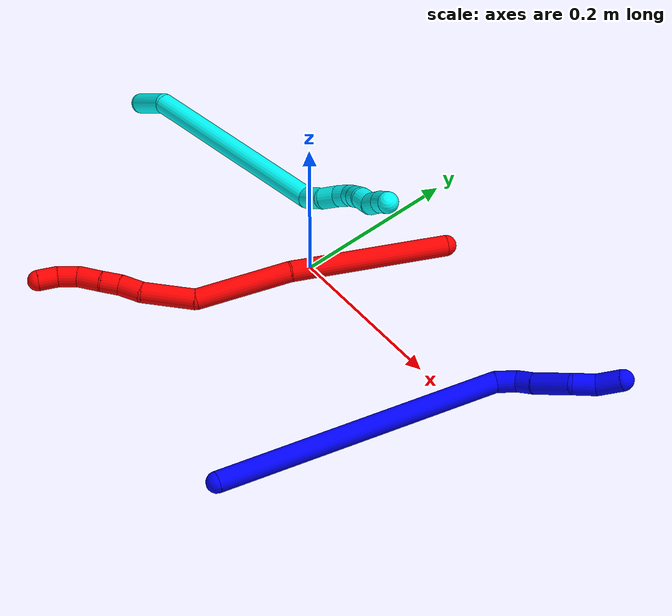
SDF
<sdf version="1.7">
 <world name="default">
  <plugin name="TubeGeneratorPlugin" filename="libtube_generator_plugin.so"/>
  <model name="photoneo_s_sensor">
   <static>1</static>
   <pose>0 0 2 1.57079 1.57079 3.14159</pose>
   <link name="link">
    <inertial><mass>0.1</mass></inertial>
    <sensor name="sensor" type="depth">
     <update_rate>30</update_rate>
     <camera>
      <horizontal_fov>1.22</horizontal_fov>
      <image><width>1920</width><height>1200</height><format>B8G8R8</format></image>
      <clip><near>0.1</near><far>4</far></clip>
      <depth_camera><output>points</output></depth_camera>
     </camera>
     <plugin name="camera_plugin" filename="libgazebo_ros_depth_camera.so">
      <baseline>0.2</baseline>
      <alwaysOn>1</alwaysOn>
      <updateRate>0.0</updateRate>
      <cameraName>camera_ir</cameraName>
      <imageTopicName>/camera/color/image_raw</imageTopicName>
      <cameraInfoTopicName>/camera/color/camera_info</cameraInfoTopicName>
      <depthImageTopicName>/camera/depth/image_raw</depthImageTopicName>
      <depthImageCameraInfoTopicName>/camera/depth/camera_info</depthImageCameraInfoTopicName>
      <pointCloudTopicName>/camera/depth/points</pointCloudTopicName>
      <frameName>fr_optical</frameName>
      <pointCloudCutoff>0.1</pointCloudCutoff>
      <pointCloudCutoffMax>2.0</pointCloudCutoffMax>
      <distortionK1>0</distortionK1>
      <distortionK2>0</distortionK2>
      <distortionK3>0</distortionK3>
      <distortionT1>0</distortionT1>
      <distortionT2>0</distortionT2>
      <CxPrime>0</CxPrime>
      <Cx>0</Cx>
      <Cy>0</Cy>
      <focalLength>0</focalLength>
      <hackBaseline>0</hackBaseline>
     </plugin>
    </sensor>
   </link>
  </model>
  <gravity>0 0 -9.8</gravity>
  <magnetic_field>6e-06 2.3e-05 -4.2e-05</magnetic_field>
  <atmosphere type="adiabatic"/>
  <physics name="default_physics" default="0" type="ode">
   <max_step_size>0.003</max_step_size>
   <real_time_factor>1</real_time_factor>
   <real_time_update_rate>1000</real_time_update_rate>
   <max_contacts>10000</max_contacts>
   <ode>
    <solver>
     <type>quick</type>
     <iters>100</iters>
     <sor>1.3</sor>
     <use_dynamic_moi_rescaling>0</use_dynamic_moi_rescaling>
    </solver>
    <constraints>
     <contact_max_correcting_vel>0</contact_max_correcting_vel>
     <contact_surface_layer>0.001</contact_surface_layer>
     <cfm>0</cfm>
     <erp>0.2</erp>
    </constraints>
   </ode>
  </physics>
  <scene><ambient>0.4 0.4 0.4 1</ambient><background>0.7 0.7 0.7 1</background><shadows>0</shadows></scene>
  <audio><device>default</device></audio>
  <spherical_coordinates>
   <surface_model>EARTH_WGS84</surface_model>
   <latitude_deg>0</latitude_deg>
   <longitude_deg>0</longitude_deg>
   <elevation>0</elevation>
   <heading_deg>0</heading_deg>
  </spherical_coordinates>
  <model name="bin">
   <static>1</static>
   <link name="bottom">
    <collision name="collision-bottom">
     <pose>0 0 -0.01 0 -0 0</pose>
     <geometry><box><size>0.8 0.6 0.02</size></box></geometry>
     <surface>
      <friction><ode><mu>100</mu><mu2>100</mu2></ode></friction>
      <contact><collide_bitmask>65535</collide_bitmask></contact>
     </surface>
    </collision>
   </link>
   <link name="west_wall">
    <collision name="collision-west_wall">
     <pose>-0.41 0 0.1 0 -0 0</pose>
     <geometry><box><size>0.02 0.6 0.2</size></box></geometry>
     <surface>
      <friction><ode><mu>100</mu><mu2>100</mu2></ode></friction>
      <contact><collide_bitmask>65535</collide_bitmask></contact>
     </surface>
    </collision>
   </link>
   <link name="east_wall">
    <collision name="collision-east_wall">
     <pose>0.41 0 0.1 0 -0 0</pose>
     <geometry><box><size>0.02 0.6 0.2</size></box></geometry>
     <surface>
      <friction><ode><mu>100</mu><mu2>100</mu2></ode></friction>
      <contact><collide_bitmask>65535</collide_bitmask></contact>
     </surface>
    </collision>
   </link>
   <link name="south_wall">
    <collision name="collision-south_wall">
     <pose>0 -0.31 0.1 0 -0 0</pose>
     <geometry><box><size>0.8 0.02 0.2</size></box></geometry>
     <surface>
      <friction><ode><mu>100</mu><mu2>100</mu2></ode></friction>
      <contact><collide_bitmask>65535</collide_bitmask></contact>
     </surface>
    </collision>
   </link>
   <link name="north_wall">
    <collision name="collision-north_wall">
     <pose>0 0.31 0.1 0 -0 0</pose>
     <geometry><box><size>0.8 0.02 0.2</size></box></geometry>
     <surface>
      <friction><ode><mu>100</mu><mu2>100</mu2></ode></friction>
      <contact><collide_bitmask>65535</collide_bitmask></contact>
     </surface>
    </collision>
   </link>
  </model>
  <model name="1">
   <static>0</static>
   <link name="1">
    <collision name="collision-cylinder-e_1_1_4">
     <pose>0.068774 0.072668 0.141328 -0.474929 0.408433 -0.100167</pose>
     <geometry><cylinder><radius>0.0125</radius><length>0.346319</length></cylinder></geometry>
     <surface>
      <friction><ode><mu>1.16</mu><mu2>1.16</mu2><slip1>0</slip1><slip2>0</slip2></ode></friction>
      <contact><ode><kp>1e+06</kp><kd>1</kd><max_vel>0</max_vel><min_depth>0.001</min_depth></ode></contact>
     </surface>
    </collision>
    <visual name="visual-cylinder-e_1_1_4">
     <pose>0.068774 0.072668 0.141328 -0.474929 0.408433 -0.100167</pose>
     <geometry><cylinder><radius>0.0125</radius><length>0.346319</length></cylinder></geometry>
     <material><ambient>0 0 1 1</ambient></material>
    </visual>
    <collision name="collision-cylinder-e_2_4_5">
     <pose>0.138596 0.155218 0.290754 -0.884283 0.081839 -0.038759</pose>
     <geometry><cylinder><radius>0.0125</radius><length>0.025636</length></cylinder></geometry>
     <surface>
      <friction><ode><mu>1.16</mu><mu2>1.16</mu2><slip1>0</slip1><slip2>0</slip2></ode></friction>
      <contact><ode><kp>1e+06</kp><kd>1</kd><max_vel>0</max_vel><min_depth>0.001</min_depth></ode></contact>
     </surface>
    </collision>
    <visual name="visual-cylinder-e_2_4_5">
     <pose>0.138596 0.155218 0.290754 -0.884283 0.081839 -0.038759</pose>
     <geometry><cylinder><radius>0.0125</radius><length>0.025636</length></cylinder></geometry>
     <material><ambient>0 0 1 1</ambient></material>
    </visual>
    <collision name="collision-cylinder-e_3_5_6">
     <pose>0.138481 0.175751 0.300988 -1.37286 -0.106669 0.087426</pose>
     <geometry><cylinder><radius>0.0125</radius><length>0.021852</length></cylinder></geometry>
     <surface>
      <friction><ode><mu>1.16</mu><mu2>1.16</mu2><slip1>0</slip1><slip2>0</slip2></ode></friction>
      <contact><ode><kp>1e+06</kp><kd>1</kd><max_vel>0</max_vel><min_depth>0.001</min_depth></ode></contact>
     </surface>
    </collision>
    <visual name="visual-cylinder-e_3_5_6">
     <pose>0.138481 0.175751 0.300988 -1.37286 -0.106669 0.087426</pose>
     <geometry><cylinder><radius>0.0125</radius><length>0.021852</length></cylinder></geometry>
     <material><ambient>0 0 1 1</ambient></material>
    </visual>
    <collision name="collision-cylinder-e_4_6_7">
     <pose>0.137351 0.209488 0.308908 -1.32528 0.00141 -0.001101</pose>
     <geometry><cylinder><radius>0.0125</radius><length>0.047597</length></cylinder></geometry>
     <surface>
      <friction><ode><mu>1.16</mu><mu2>1.16</mu2><slip1>0</slip1><slip2>0</slip2></ode></friction>
      <contact><ode><kp>1e+06</kp><kd>1</kd><max_vel>0</max_vel><min_depth>0.001</min_depth></ode></contact>
     </surface>
    </collision>
    <visual name="visual-cylinder-e_4_6_7">
     <pose>0.137351 0.209488 0.308908 -1.32528 0.00141 -0.001101</pose>
     <geometry><cylinder><radius>0.0125</radius><length>0.047597</length></cylinder></geometry>
     <material><ambient>0 0 1 1</ambient></material>
    </visual>
    <collision name="collision-cylinder-e_5_7_8">
     <pose>0.137653 0.243241 0.323221 -0.896439 0.019673 -0.00946</pose>
     <geometry><cylinder><radius>0.0125</radius><length>0.027322</length></cylinder></geometry>
     <surface>
      <friction><ode><mu>1.16</mu><mu2>1.16</mu2><slip1>0</slip1><slip2>0</slip2></ode></friction>
      <contact><ode><kp>1e+06</kp><kd>1</kd><max_vel>0</max_vel><min_depth>0.001</min_depth></ode></contact>
     </surface>
    </collision>
    <visual name="visual-cylinder-e_5_7_8">
     <pose>0.137653 0.243241 0.323221 -0.896439 0.019673 -0.00946</pose>
     <geometry><cylinder><radius>0.0125</radius><length>0.027322</length></cylinder></geometry>
     <material><ambient>0 0 1 1</ambient></material>
    </visual>
    <collision name="collision-cylinder-e_6_8_2">
     <pose>0.140912 0.268305 0.337072 -1.21664 0.192387 -0.134196</pose>
     <geometry><cylinder><radius>0.0125</radius><length>0.031274</length></cylinder></geometry>
     <surface>
      <friction><ode><mu>1.16</mu><mu2>1.16</mu2><slip1>0</slip1><slip2>0</slip2></ode></friction>
      <contact><ode><kp>1e+06</kp><kd>1</kd><max_vel>0</max_vel><min_depth>0.001</min_depth></ode></contact>
     </surface>
    </collision>
    <visual name="visual-cylinder-e_6_8_2">
     <pose>0.140912 0.268305 0.337072 -1.21664 0.192387 -0.134196</pose>
     <geometry><cylinder><radius>0.0125</radius><length>0.031274</length></cylinder></geometry>
     <material><ambient>0 0 1 1</ambient></material>
    </visual>
    <collision name="collision-sphere-2">
     <pose>0.143902 0.282701 0.342395 0 -0 0</pose>
     <geometry><sphere><radius>0.0125</radius></sphere></geometry>
     <surface>
      <friction><ode><mu>1.16</mu><mu2>1.16</mu2><slip1>0</slip1><slip2>0</slip2></ode></friction>
      <contact><ode><kp>1e+06</kp><kd>1</kd><max_vel>0</max_vel><min_depth>0.001</min_depth></ode></contact>
     </surface>
    </collision>
    <visual name="visual-sphere-2">
     <pose>0.143902 0.282701 0.342395 0 -0 0</pose>
     <geometry><sphere><radius>0.0125</radius></sphere></geometry>
     <material><ambient>0 0 1 1</ambient></material>
    </visual>
    <collision name="collision-sphere-4">
     <pose>0.137548 0.145337 0.282656 0 -0 0</pose>
     <geometry><sphere><radius>0.0125</radius></sphere></geometry>
     <surface>
      <friction><ode><mu>1.16</mu><mu2>1.16</mu2><slip1>0</slip1><slip2>0</slip2></ode></friction>
      <contact><ode><kp>1e+06</kp><kd>1</kd><max_vel>0</max_vel><min_depth>0.001</min_depth></ode></contact>
     </surface>
    </collision>
    <visual name="visual-sphere-4">
     <pose>0.137548 0.145337 0.282656 0 -0 0</pose>
     <geometry><sphere><radius>0.0125</radius></sphere></geometry>
     <material><ambient>0 0 1 1</ambient></material>
    </visual>
    <collision name="collision-sphere-1">
     <geometry><sphere><radius>0.0125</radius></sphere></geometry>
     <surface>
      <friction><ode><mu>1.16</mu><mu2>1.16</mu2><slip1>0</slip1><slip2>0</slip2></ode></friction>
      <contact><ode><kp>1e+06</kp><kd>1</kd><max_vel>0</max_vel><min_depth>0.001</min_depth></ode></contact>
     </surface>
    </collision>
    <visual name="visual-sphere-1">
     <geometry><sphere><radius>0.0125</radius></sphere></geometry>
     <material><ambient>0 0 1 1</ambient></material>
    </visual>
    <collision name="collision-sphere-8">
     <pose>0.137922 0.253909 0.331749 0 -0 0</pose>
     <geometry><sphere><radius>0.0125</radius></sphere></geometry>
     <surface>
      <friction><ode><mu>1.16</mu><mu2>1.16</mu2><slip1>0</slip1><slip2>0</slip2></ode></friction>
      <contact><ode><kp>1e+06</kp><kd>1</kd><max_vel>0</max_vel><min_depth>0.001</min_depth></ode></contact>
     </surface>
    </collision>
    <visual name="visual-sphere-8">
     <pose>0.137922 0.253909 0.331749 0 -0 0</pose>
     <geometry><sphere><radius>0.0125</radius></sphere></geometry>
     <material><ambient>0 0 1 1</ambient></material>
    </visual>
    <collision name="collision-sphere-5">
     <pose>0.139644 0.165099 0.298851 0 -0 0</pose>
     <geometry><sphere><radius>0.0125</radius></sphere></geometry>
     <surface>
      <friction><ode><mu>1.16</mu><mu2>1.16</mu2><slip1>0</slip1><slip2>0</slip2></ode></friction>
      <contact><ode><kp>1e+06</kp><kd>1</kd><max_vel>0</max_vel><min_depth>0.001</min_depth></ode></contact>
     </surface>
    </collision>
    <visual name="visual-sphere-5">
     <pose>0.139644 0.165099 0.298851 0 -0 0</pose>
     <geometry><sphere><radius>0.0125</radius></sphere></geometry>
     <material><ambient>0 0 1 1</ambient></material>
    </visual>
    <collision name="collision-sphere-6">
     <pose>0.137317 0.186403 0.303124 0 -0 0</pose>
     <geometry><sphere><radius>0.0125</radius></sphere></geometry>
     <surface>
      <friction><ode><mu>1.16</mu><mu2>1.16</mu2><slip1>0</slip1><slip2>0</slip2></ode></friction>
      <contact><ode><kp>1e+06</kp><kd>1</kd><max_vel>0</max_vel><min_depth>0.001</min_depth></ode></contact>
     </surface>
    </collision>
    <visual name="visual-sphere-6">
     <pose>0.137317 0.186403 0.303124 0 -0 0</pose>
     <geometry><sphere><radius>0.0125</radius></sphere></geometry>
     <material><ambient>0 0 1 1</ambient></material>
    </visual>
    <collision name="collision-sphere-7">
     <pose>0.137384 0.232572 0.314693 0 -0 0</pose>
     <geometry><sphere><radius>0.0125</radius></sphere></geometry>
     <surface>
      <friction><ode><mu>1.16</mu><mu2>1.16</mu2><slip1>0</slip1><slip2>0</slip2></ode></friction>
      <contact><ode><kp>1e+06</kp><kd>1</kd><max_vel>0</max_vel><min_depth>0.001</min_depth></ode></contact>
     </surface>
    </collision>
    <visual name="visual-sphere-7">
     <pose>0.137384 0.232572 0.314693 0 -0 0</pose>
     <geometry><sphere><radius>0.0125</radius></sphere></geometry>
     <material><ambient>0 0 1 1</ambient></material>
    </visual>
    <inertial>
     <pose>0.090204 0.115988 0.194103 0 -0 0</pose>
     <mass>0.5</mass>
     <inertia>
      <ixx>0.002886</ixx>
      <ixy>0</ixy>
      <ixz>0</ixz>
      <iyy>0.002848</iyy>
      <iyz>0</iyz>
      <izz>-0.002832</izz>
     </inertia>
    </inertial>
   </link>
   <pose>0.191371 -0.288501 0.025438 2.38606 -0.581075 2.37485</pose>
  </model>
  <model name="2">
   <static>0</static>
   <link name="2">
    <collision name="collision-cylinder-e_1_1_4">
     <pose>-0.034559 -0.061906 0.064608 0.764043 -0.36857 -0.149497</pose>
     <geometry><cylinder><radius>0.0125</radius><length>0.191842</length></cylinder></geometry>
     <surface>
      <friction><ode><mu>1.16</mu><mu2>1.16</mu2><slip1>0</slip1><slip2>0</slip2></ode></friction>
      <contact><ode><kp>1e+06</kp><kd>1</kd><max_vel>0</max_vel><min_depth>0.001</min_depth></ode></contact>
     </surface>
    </collision>
    <visual name="visual-cylinder-e_1_1_4">
     <pose>-0.034559 -0.061906 0.064608 0.764043 -0.36857 -0.149497</pose>
     <geometry><cylinder><radius>0.0125</radius><length>0.191842</length></cylinder></geometry>
     <material><ambient>1 0 0 1</ambient></material>
    </visual>
    <collision name="collision-cylinder-e_2_4_5">
     <pose>-0.084115 -0.167341 0.164354 0.891659 -0.261945 -0.125744</pose>
     <geometry><cylinder><radius>0.0125</radius><length>0.115834</length></cylinder></geometry>
     <surface>
      <friction><ode><mu>1.16</mu><mu2>1.16</mu2><slip1>0</slip1><slip2>0</slip2></ode></friction>
      <contact><ode><kp>1e+06</kp><kd>1</kd><max_vel>0</max_vel><min_depth>0.001</min_depth></ode></contact>
     </surface>
    </collision>
    <visual name="visual-cylinder-e_2_4_5">
     <pose>-0.084115 -0.167341 0.164354 0.891659 -0.261945 -0.125744</pose>
     <geometry><cylinder><radius>0.0125</radius><length>0.115834</length></cylinder></geometry>
     <material><ambient>1 0 0 1</ambient></material>
    </visual>
    <collision name="collision-cylinder-e_3_5_6">
     <pose>-0.119447 -0.232621 0.211299 1.0735 -0.68777 -0.419889</pose>
     <geometry><cylinder><radius>0.0125</radius><length>0.064062</length></cylinder></geometry>
     <surface>
      <friction><ode><mu>1.16</mu><mu2>1.16</mu2><slip1>0</slip1><slip2>0</slip2></ode></friction>
      <contact><ode><kp>1e+06</kp><kd>1</kd><max_vel>0</max_vel><min_depth>0.001</min_depth></ode></contact>
     </surface>
    </collision>
    <visual name="visual-cylinder-e_3_5_6">
     <pose>-0.119447 -0.232621 0.211299 1.0735 -0.68777 -0.419889</pose>
     <geometry><cylinder><radius>0.0125</radius><length>0.064062</length></cylinder></geometry>
     <material><ambient>1 0 0 1</ambient></material>
    </visual>
    <collision name="collision-cylinder-e_4_6_7">
     <pose>-0.150335 -0.263174 0.225119 1.34593 -0.863101 -0.703581</pose>
     <geometry><cylinder><radius>0.0125</radius><length>0.027778</length></cylinder></geometry>
     <surface>
      <friction><ode><mu>1.16</mu><mu2>1.16</mu2><slip1>0</slip1><slip2>0</slip2></ode></friction>
      <contact><ode><kp>1e+06</kp><kd>1</kd><max_vel>0</max_vel><min_depth>0.001</min_depth></ode></contact>
     </surface>
    </collision>
    <visual name="visual-cylinder-e_4_6_7">
     <pose>-0.150335 -0.263174 0.225119 1.34593 -0.863101 -0.703581</pose>
     <geometry><cylinder><radius>0.0125</radius><length>0.027778</length></cylinder></geometry>
     <material><ambient>1 0 0 1</ambient></material>
    </visual>
    <collision name="collision-cylinder-e_5_7_8">
     <pose>-0.168665 -0.279406 0.23117 1.07307 -0.743496 -0.455687</pose>
     <geometry><cylinder><radius>0.0125</radius><length>0.022976</length></cylinder></geometry>
     <surface>
      <friction><ode><mu>1.16</mu><mu2>1.16</mu2><slip1>0</slip1><slip2>0</slip2></ode></friction>
      <contact><ode><kp>1e+06</kp><kd>1</kd><max_vel>0</max_vel><min_depth>0.001</min_depth></ode></contact>
     </surface>
    </collision>
    <visual name="visual-cylinder-e_5_7_8">
     <pose>-0.168665 -0.279406 0.23117 1.07307 -0.743496 -0.455687</pose>
     <geometry><cylinder><radius>0.0125</radius><length>0.022976</length></cylinder></geometry>
     <material><ambient>1 0 0 1</ambient></material>
    </visual>
    <collision name="collision-cylinder-e_6_8_9">
     <pose>-0.186352 -0.297051 0.238083 1.29629 -0.751311 -0.580453</pose>
     <geometry><cylinder><radius>0.0125</radius><length>0.029041</length></cylinder></geometry>
     <surface>
      <friction><ode><mu>1.16</mu><mu2>1.16</mu2><slip1>0</slip1><slip2>0</slip2></ode></friction>
      <contact><ode><kp>1e+06</kp><kd>1</kd><max_vel>0</max_vel><min_depth>0.001</min_depth></ode></contact>
     </surface>
    </collision>
    <visual name="visual-cylinder-e_6_8_9">
     <pose>-0.186352 -0.297051 0.238083 1.29629 -0.751311 -0.580453</pose>
     <geometry><cylinder><radius>0.0125</radius><length>0.029041</length></cylinder></geometry>
     <material><ambient>1 0 0 1</ambient></material>
    </visual>
    <collision name="collision-cylinder-e_7_9_10">
     <pose>-0.202678 -0.316058 0.246282 1.02653 -0.557911 -0.320125</pose>
     <geometry><cylinder><radius>0.0125</radius><length>0.02423</length></cylinder></geometry>
     <surface>
      <friction><ode><mu>1.16</mu><mu2>1.16</mu2><slip1>0</slip1><slip2>0</slip2></ode></friction>
      <contact><ode><kp>1e+06</kp><kd>1</kd><max_vel>0</max_vel><min_depth>0.001</min_depth></ode></contact>
     </surface>
    </collision>
    <visual name="visual-cylinder-e_7_9_10">
     <pose>-0.202678 -0.316058 0.246282 1.02653 -0.557911 -0.320125</pose>
     <geometry><cylinder><radius>0.0125</radius><length>0.02423</length></cylinder></geometry>
     <material><ambient>1 0 0 1</ambient></material>
    </visual>
    <collision name="collision-cylinder-e_8_10_2">
     <pose>-0.213286 -0.333496 0.258988 0.86388 -0.353451 -0.164278</pose>
     <geometry><cylinder><radius>0.0125</radius><length>0.024236</length></cylinder></geometry>
     <surface>
      <friction><ode><mu>1.16</mu><mu2>1.16</mu2><slip1>0</slip1><slip2>0</slip2></ode></friction>
      <contact><ode><kp>1e+06</kp><kd>1</kd><max_vel>0</max_vel><min_depth>0.001</min_depth></ode></contact>
     </surface>
    </collision>
    <visual name="visual-cylinder-e_8_10_2">
     <pose>-0.213286 -0.333496 0.258988 0.86388 -0.353451 -0.164278</pose>
     <geometry><cylinder><radius>0.0125</radius><length>0.024236</length></cylinder></geometry>
     <material><ambient>1 0 0 1</ambient></material>
    </visual>
    <collision name="collision-sphere-2">
     <pose>-0.217481 -0.34214 0.266372 0 -0 0</pose>
     <geometry><sphere><radius>0.0125</radius></sphere></geometry>
     <surface>
      <friction><ode><mu>1.16</mu><mu2>1.16</mu2><slip1>0</slip1><slip2>0</slip2></ode></friction>
      <contact><ode><kp>1e+06</kp><kd>1</kd><max_vel>0</max_vel><min_depth>0.001</min_depth></ode></contact>
     </surface>
    </collision>
    <visual name="visual-sphere-2">
     <pose>-0.217481 -0.34214 0.266372 0 -0 0</pose>
     <geometry><sphere><radius>0.0125</radius></sphere></geometry>
     <material><ambient>1 0 0 1</ambient></material>
    </visual>
    <collision name="collision-sphere-10">
     <pose>-0.209092 -0.324851 0.251604 0 -0 0</pose>
     <geometry><sphere><radius>0.0125</radius></sphere></geometry>
     <surface>
      <friction><ode><mu>1.16</mu><mu2>1.16</mu2><slip1>0</slip1><slip2>0</slip2></ode></friction>
      <contact><ode><kp>1e+06</kp><kd>1</kd><max_vel>0</max_vel><min_depth>0.001</min_depth></ode></contact>
     </surface>
    </collision>
    <visual name="visual-sphere-10">
     <pose>-0.209092 -0.324851 0.251604 0 -0 0</pose>
     <geometry><sphere><radius>0.0125</radius></sphere></geometry>
     <material><ambient>1 0 0 1</ambient></material>
    </visual>
    <collision name="collision-sphere-9">
     <pose>-0.196264 -0.307265 0.24096 0 -0 0</pose>
     <geometry><sphere><radius>0.0125</radius></sphere></geometry>
     <surface>
      <friction><ode><mu>1.16</mu><mu2>1.16</mu2><slip1>0</slip1><slip2>0</slip2></ode></friction>
      <contact><ode><kp>1e+06</kp><kd>1</kd><max_vel>0</max_vel><min_depth>0.001</min_depth></ode></contact>
     </surface>
    </collision>
    <visual name="visual-sphere-9">
     <pose>-0.196264 -0.307265 0.24096 0 -0 0</pose>
     <geometry><sphere><radius>0.0125</radius></sphere></geometry>
     <material><ambient>1 0 0 1</ambient></material>
    </visual>
    <collision name="collision-sphere-4">
     <pose>-0.069117 -0.123812 0.129216 0 -0 0</pose>
     <geometry><sphere><radius>0.0125</radius></sphere></geometry>
     <surface>
      <friction><ode><mu>1.16</mu><mu2>1.16</mu2><slip1>0</slip1><slip2>0</slip2></ode></friction>
      <contact><ode><kp>1e+06</kp><kd>1</kd><max_vel>0</max_vel><min_depth>0.001</min_depth></ode></contact>
     </surface>
    </collision>
    <visual name="visual-sphere-4">
     <pose>-0.069117 -0.123812 0.129216 0 -0 0</pose>
     <geometry><sphere><radius>0.0125</radius></sphere></geometry>
     <material><ambient>1 0 0 1</ambient></material>
    </visual>
    <collision name="collision-sphere-1">
     <geometry><sphere><radius>0.0125</radius></sphere></geometry>
     <surface>
      <friction><ode><mu>1.16</mu><mu2>1.16</mu2><slip1>0</slip1><slip2>0</slip2></ode></friction>
      <contact><ode><kp>1e+06</kp><kd>1</kd><max_vel>0</max_vel><min_depth>0.001</min_depth></ode></contact>
     </surface>
    </collision>
    <visual name="visual-sphere-1">
     <geometry><sphere><radius>0.0125</radius></sphere></geometry>
     <material><ambient>1 0 0 1</ambient></material>
    </visual>
    <collision name="collision-sphere-8">
     <pose>-0.176441 -0.286837 0.235207 0 -0 0</pose>
     <geometry><sphere><radius>0.0125</radius></sphere></geometry>
     <surface>
      <friction><ode><mu>1.16</mu><mu2>1.16</mu2><slip1>0</slip1><slip2>0</slip2></ode></friction>
      <contact><ode><kp>1e+06</kp><kd>1</kd><max_vel>0</max_vel><min_depth>0.001</min_depth></ode></contact>
     </surface>
    </collision>
    <visual name="visual-sphere-8">
     <pose>-0.176441 -0.286837 0.235207 0 -0 0</pose>
     <geometry><sphere><radius>0.0125</radius></sphere></geometry>
     <material><ambient>1 0 0 1</ambient></material>
    </visual>
    <collision name="collision-sphere-5">
     <pose>-0.099114 -0.210869 0.199492 0 -0 0</pose>
     <geometry><sphere><radius>0.0125</radius></sphere></geometry>
     <surface>
      <friction><ode><mu>1.16</mu><mu2>1.16</mu2><slip1>0</slip1><slip2>0</slip2></ode></friction>
      <contact><ode><kp>1e+06</kp><kd>1</kd><max_vel>0</max_vel><min_depth>0.001</min_depth></ode></contact>
     </surface>
    </collision>
    <visual name="visual-sphere-5">
     <pose>-0.099114 -0.210869 0.199492 0 -0 0</pose>
     <geometry><sphere><radius>0.0125</radius></sphere></geometry>
     <material><ambient>1 0 0 1</ambient></material>
    </visual>
    <collision name="collision-sphere-6">
     <pose>-0.139781 -0.254372 0.223106 0 -0 0</pose>
     <geometry><sphere><radius>0.0125</radius></sphere></geometry>
     <surface>
      <friction><ode><mu>1.16</mu><mu2>1.16</mu2><slip1>0</slip1><slip2>0</slip2></ode></friction>
      <contact><ode><kp>1e+06</kp><kd>1</kd><max_vel>0</max_vel><min_depth>0.001</min_depth></ode></contact>
     </surface>
    </collision>
    <visual name="visual-sphere-6">
     <pose>-0.139781 -0.254372 0.223106 0 -0 0</pose>
     <geometry><sphere><radius>0.0125</radius></sphere></geometry>
     <material><ambient>1 0 0 1</ambient></material>
    </visual>
    <collision name="collision-sphere-7">
     <pose>-0.160889 -0.271976 0.227132 0 -0 0</pose>
     <geometry><sphere><radius>0.0125</radius></sphere></geometry>
     <surface>
      <friction><ode><mu>1.16</mu><mu2>1.16</mu2><slip1>0</slip1><slip2>0</slip2></ode></friction>
      <contact><ode><kp>1e+06</kp><kd>1</kd><max_vel>0</max_vel><min_depth>0.001</min_depth></ode></contact>
     </surface>
    </collision>
    <visual name="visual-sphere-7">
     <pose>-0.160889 -0.271976 0.227132 0 -0 0</pose>
     <geometry><sphere><radius>0.0125</radius></sphere></geometry>
     <material><ambient>1 0 0 1</ambient></material>
    </visual>
    <inertial>
     <pose>-0.095137 -0.168519 0.151384 0 -0 0</pose>
     <mass>0.5</mass>
     <inertia>
      <ixx>0.000576</ixx>
      <ixy>0</ixy>
      <ixz>0</ixz>
      <iyy>0.000421</iyy>
      <iyz>0</iyz>
      <izz>0.000803</izz>
     </inertia>
    </inertial>
   </link>
   <pose>0.083736 0.140357 0.011498 0.960703 0.533995 -0.028168</pose>
  </model>
  <model name="3">
   <static>0</static>
   <link name="3">
    <collision name="collision-cylinder-e_1_1_4">
     <pose>0.020681 -6.7e-05 0.020138 0.003311 0.798701 0.001397</pose>
     <geometry><cylinder><radius>0.0125</radius><length>0.057732</length></cylinder></geometry>
     <surface>
      <friction><ode><mu>1.16</mu><mu2>1.16</mu2><slip1>0</slip1><slip2>0</slip2></ode></friction>
      <contact><ode><kp>1e+06</kp><kd>1</kd><max_vel>0</max_vel><min_depth>0.001</min_depth></ode></contact>
     </surface>
    </collision>
    <visual name="visual-cylinder-e_1_1_4">
     <pose>0.020681 -6.7e-05 0.020138 0.003311 0.798701 0.001397</pose>
     <geometry><cylinder><radius>0.0125</radius><length>0.057732</length></cylinder></geometry>
     <material><ambient>0.003922 1 0.996078 1</ambient></material>
    </visual>
    <collision name="collision-cylinder-e_2_4_5">
     <pose>0.165644 -0.023482 0.082379 0.506336 1.20122 0.35082</pose>
     <geometry><cylinder><radius>0.0125</radius><length>0.266561</length></cylinder></geometry>
     <surface>
      <friction><ode><mu>1.16</mu><mu2>1.16</mu2><slip1>0</slip1><slip2>0</slip2></ode></friction>
      <contact><ode><kp>1e+06</kp><kd>1</kd><max_vel>0</max_vel><min_depth>0.001</min_depth></ode></contact>
     </surface>
    </collision>
    <visual name="visual-cylinder-e_2_4_5">
     <pose>0.165644 -0.023482 0.082379 0.506336 1.20122 0.35082</pose>
     <geometry><cylinder><radius>0.0125</radius><length>0.266561</length></cylinder></geometry>
     <material><ambient>0.003922 1 0.996078 1</ambient></material>
    </visual>
    <collision name="collision-cylinder-e_3_5_6">
     <pose>0.301676 -0.046385 0.135357 -0.040898 0.823631 -0.017866</pose>
     <geometry><cylinder><radius>0.0125</radius><length>0.032033</length></cylinder></geometry>
     <surface>
      <friction><ode><mu>1.16</mu><mu2>1.16</mu2><slip1>0</slip1><slip2>0</slip2></ode></friction>
      <contact><ode><kp>1e+06</kp><kd>1</kd><max_vel>0</max_vel><min_depth>0.001</min_depth></ode></contact>
     </surface>
    </collision>
    <visual name="visual-cylinder-e_3_5_6">
     <pose>0.301676 -0.046385 0.135357 -0.040898 0.823631 -0.017866</pose>
     <geometry><cylinder><radius>0.0125</radius><length>0.032033</length></cylinder></geometry>
     <material><ambient>0.003922 1 0.996078 1</ambient></material>
    </visual>
    <collision name="collision-cylinder-e_4_6_7">
     <pose>0.322629 -0.041994 0.152427 -0.567222 0.897213 -0.27877</pose>
     <geometry><cylinder><radius>0.0125</radius><length>0.023551</length></cylinder></geometry>
     <surface>
      <friction><ode><mu>1.16</mu><mu2>1.16</mu2><slip1>0</slip1><slip2>0</slip2></ode></friction>
      <contact><ode><kp>1e+06</kp><kd>1</kd><max_vel>0</max_vel><min_depth>0.001</min_depth></ode></contact>
     </surface>
    </collision>
    <visual name="visual-cylinder-e_4_6_7">
     <pose>0.322629 -0.041994 0.152427 -0.567222 0.897213 -0.27877</pose>
     <geometry><cylinder><radius>0.0125</radius><length>0.023551</length></cylinder></geometry>
     <material><ambient>0.003922 1 0.996078 1</ambient></material>
    </visual>
    <collision name="collision-cylinder-e_5_7_8">
     <pose>0.339269 -0.036719 0.1652 -0.199158 0.836588 -0.088767</pose>
     <geometry><cylinder><radius>0.0125</radius><length>0.020033</length></cylinder></geometry>
     <surface>
      <friction><ode><mu>1.16</mu><mu2>1.16</mu2><slip1>0</slip1><slip2>0</slip2></ode></friction>
      <contact><ode><kp>1e+06</kp><kd>1</kd><max_vel>0</max_vel><min_depth>0.001</min_depth></ode></contact>
     </surface>
    </collision>
    <visual name="visual-cylinder-e_5_7_8">
     <pose>0.339269 -0.036719 0.1652 -0.199158 0.836588 -0.088767</pose>
     <geometry><cylinder><radius>0.0125</radius><length>0.020033</length></cylinder></geometry>
     <material><ambient>0.003922 1 0.996078 1</ambient></material>
    </visual>
    <collision name="collision-cylinder-e_6_8_9">
     <pose>0.35222 -0.037468 0.179901 0.25034 0.581842 0.075314</pose>
     <geometry><cylinder><radius>0.0125</radius><length>0.02007</length></cylinder></geometry>
     <surface>
      <friction><ode><mu>1.16</mu><mu2>1.16</mu2><slip1>0</slip1><slip2>0</slip2></ode></friction>
      <contact><ode><kp>1e+06</kp><kd>1</kd><max_vel>0</max_vel><min_depth>0.001</min_depth></ode></contact>
     </surface>
    </collision>
    <visual name="visual-cylinder-e_6_8_9">
     <pose>0.35222 -0.037468 0.179901 0.25034 0.581842 0.075314</pose>
     <geometry><cylinder><radius>0.0125</radius><length>0.02007</length></cylinder></geometry>
     <material><ambient>0.003922 1 0.996078 1</ambient></material>
    </visual>
    <collision name="collision-cylinder-e_7_9_10">
     <pose>0.363285 -0.04157 0.196102 0.245553 0.587891 0.074674</pose>
     <geometry><cylinder><radius>0.0125</radius><length>0.020018</length></cylinder></geometry>
     <surface>
      <friction><ode><mu>1.16</mu><mu2>1.16</mu2><slip1>0</slip1><slip2>0</slip2></ode></friction>
      <contact><ode><kp>1e+06</kp><kd>1</kd><max_vel>0</max_vel><min_depth>0.001</min_depth></ode></contact>
     </surface>
    </collision>
    <visual name="visual-cylinder-e_7_9_10">
     <pose>0.363285 -0.04157 0.196102 0.245553 0.587891 0.074674</pose>
     <geometry><cylinder><radius>0.0125</radius><length>0.020018</length></cylinder></geometry>
     <material><ambient>0.003922 1 0.996078 1</ambient></material>
    </visual>
    <collision name="collision-cylinder-e_8_10_11">
     <pose>0.376875 -0.04616 0.209548 0.445899 0.933719 0.227555</pose>
     <geometry><cylinder><radius>0.0125</radius><length>0.020001</length></cylinder></geometry>
     <surface>
      <friction><ode><mu>1.16</mu><mu2>1.16</mu2><slip1>0</slip1><slip2>0</slip2></ode></friction>
      <contact><ode><kp>1e+06</kp><kd>1</kd><max_vel>0</max_vel><min_depth>0.001</min_depth></ode></contact>
     </surface>
    </collision>
    <visual name="visual-cylinder-e_8_10_11">
     <pose>0.376875 -0.04616 0.209548 0.445899 0.933719 0.227555</pose>
     <geometry><cylinder><radius>0.0125</radius><length>0.020001</length></cylinder></geometry>
     <material><ambient>0.003922 1 0.996078 1</ambient></material>
    </visual>
    <collision name="collision-cylinder-e_9_11_12">
     <pose>0.391196 -0.047674 0.222625 -0.135588 0.679157 -0.047962</pose>
     <geometry><cylinder><radius>0.0125</radius><length>0.02</length></cylinder></geometry>
     <surface>
      <friction><ode><mu>1.16</mu><mu2>1.16</mu2><slip1>0</slip1><slip2>0</slip2></ode></friction>
      <contact><ode><kp>1e+06</kp><kd>1</kd><max_vel>0</max_vel><min_depth>0.001</min_depth></ode></contact>
     </surface>
    </collision>
    <visual name="visual-cylinder-e_9_11_12">
     <pose>0.391196 -0.047674 0.222625 -0.135588 0.679157 -0.047962</pose>
     <geometry><cylinder><radius>0.0125</radius><length>0.02</length></cylinder></geometry>
     <material><ambient>0.003922 1 0.996078 1</ambient></material>
    </visual>
    <collision name="collision-cylinder-e_10_12_2">
     <pose>0.403657 -0.047591 0.238137 0.123526 0.666168 0.042785</pose>
     <geometry><cylinder><radius>0.0125</radius><length>0.02</length></cylinder></geometry>
     <surface>
      <friction><ode><mu>1.16</mu><mu2>1.16</mu2><slip1>0</slip1><slip2>0</slip2></ode></friction>
      <contact><ode><kp>1e+06</kp><kd>1</kd><max_vel>0</max_vel><min_depth>0.001</min_depth></ode></contact>
     </surface>
    </collision>
    <visual name="visual-cylinder-e_10_12_2">
     <pose>0.403657 -0.047591 0.238137 0.123526 0.666168 0.042785</pose>
     <geometry><cylinder><radius>0.0125</radius><length>0.02</length></cylinder></geometry>
     <material><ambient>0.003922 1 0.996078 1</ambient></material>
    </visual>
    <collision name="collision-sphere-2">
     <pose>0.409837 -0.048559 0.245939 0 -0 0</pose>
     <geometry><sphere><radius>0.0125</radius></sphere></geometry>
     <surface>
      <friction><ode><mu>1.16</mu><mu2>1.16</mu2><slip1>0</slip1><slip2>0</slip2></ode></friction>
      <contact><ode><kp>1e+06</kp><kd>1</kd><max_vel>0</max_vel><min_depth>0.001</min_depth></ode></contact>
     </surface>
    </collision>
    <visual name="visual-sphere-2">
     <pose>0.409837 -0.048559 0.245939 0 -0 0</pose>
     <geometry><sphere><radius>0.0125</radius></sphere></geometry>
     <material><ambient>0.003922 1 0.996078 1</ambient></material>
    </visual>
    <collision name="collision-sphere-12">
     <pose>0.397477 -0.046622 0.230335 0 -0 0</pose>
     <geometry><sphere><radius>0.0125</radius></sphere></geometry>
     <surface>
      <friction><ode><mu>1.16</mu><mu2>1.16</mu2><slip1>0</slip1><slip2>0</slip2></ode></friction>
      <contact><ode><kp>1e+06</kp><kd>1</kd><max_vel>0</max_vel><min_depth>0.001</min_depth></ode></contact>
     </surface>
    </collision>
    <visual name="visual-sphere-12">
     <pose>0.397477 -0.046622 0.230335 0 -0 0</pose>
     <geometry><sphere><radius>0.0125</radius></sphere></geometry>
     <material><ambient>0.003922 1 0.996078 1</ambient></material>
    </visual>
    <collision name="collision-sphere-11">
     <pose>0.384914 -0.048726 0.214915 0 -0 0</pose>
     <geometry><sphere><radius>0.0125</radius></sphere></geometry>
     <surface>
      <friction><ode><mu>1.16</mu><mu2>1.16</mu2><slip1>0</slip1><slip2>0</slip2></ode></friction>
      <contact><ode><kp>1e+06</kp><kd>1</kd><max_vel>0</max_vel><min_depth>0.001</min_depth></ode></contact>
     </surface>
    </collision>
    <visual name="visual-sphere-11">
     <pose>0.384914 -0.048726 0.214915 0 -0 0</pose>
     <geometry><sphere><radius>0.0125</radius></sphere></geometry>
     <material><ambient>0.003922 1 0.996078 1</ambient></material>
    </visual>
    <collision name="collision-sphere-10">
     <pose>0.368836 -0.043594 0.204181 0 -0 0</pose>
     <geometry><sphere><radius>0.0125</radius></sphere></geometry>
     <surface>
      <friction><ode><mu>1.16</mu><mu2>1.16</mu2><slip1>0</slip1><slip2>0</slip2></ode></friction>
      <contact><ode><kp>1e+06</kp><kd>1</kd><max_vel>0</max_vel><min_depth>0.001</min_depth></ode></contact>
     </surface>
    </collision>
    <visual name="visual-sphere-10">
     <pose>0.368836 -0.043594 0.204181 0 -0 0</pose>
     <geometry><sphere><radius>0.0125</radius></sphere></geometry>
     <material><ambient>0.003922 1 0.996078 1</ambient></material>
    </visual>
    <collision name="collision-sphere-9">
     <pose>0.357734 -0.039545 0.188024 0 -0 0</pose>
     <geometry><sphere><radius>0.0125</radius></sphere></geometry>
     <surface>
      <friction><ode><mu>1.16</mu><mu2>1.16</mu2><slip1>0</slip1><slip2>0</slip2></ode></friction>
      <contact><ode><kp>1e+06</kp><kd>1</kd><max_vel>0</max_vel><min_depth>0.001</min_depth></ode></contact>
     </surface>
    </collision>
    <visual name="visual-sphere-9">
     <pose>0.357734 -0.039545 0.188024 0 -0 0</pose>
     <geometry><sphere><radius>0.0125</radius></sphere></geometry>
     <material><ambient>0.003922 1 0.996078 1</ambient></material>
    </visual>
    <collision name="collision-sphere-4">
     <pose>0.041362 -0.000133 0.040276 0 -0 0</pose>
     <geometry><sphere><radius>0.0125</radius></sphere></geometry>
     <surface>
      <friction><ode><mu>1.16</mu><mu2>1.16</mu2><slip1>0</slip1><slip2>0</slip2></ode></friction>
      <contact><ode><kp>1e+06</kp><kd>1</kd><max_vel>0</max_vel><min_depth>0.001</min_depth></ode></contact>
     </surface>
    </collision>
    <visual name="visual-sphere-4">
     <pose>0.041362 -0.000133 0.040276 0 -0 0</pose>
     <geometry><sphere><radius>0.0125</radius></sphere></geometry>
     <material><ambient>0.003922 1 0.996078 1</ambient></material>
    </visual>
    <collision name="collision-sphere-1">
     <geometry><sphere><radius>0.0125</radius></sphere></geometry>
     <surface>
      <friction><ode><mu>1.16</mu><mu2>1.16</mu2><slip1>0</slip1><slip2>0</slip2></ode></friction>
      <contact><ode><kp>1e+06</kp><kd>1</kd><max_vel>0</max_vel><min_depth>0.001</min_depth></ode></contact>
     </surface>
    </collision>
    <visual name="visual-sphere-1">
     <geometry><sphere><radius>0.0125</radius></sphere></geometry>
     <material><ambient>0.003922 1 0.996078 1</ambient></material>
    </visual>
    <collision name="collision-sphere-8">
     <pose>0.346705 -0.035391 0.171779 0 -0 0</pose>
     <geometry><sphere><radius>0.0125</radius></sphere></geometry>
     <surface>
      <friction><ode><mu>1.16</mu><mu2>1.16</mu2><slip1>0</slip1><slip2>0</slip2></ode></friction>
      <contact><ode><kp>1e+06</kp><kd>1</kd><max_vel>0</max_vel><min_depth>0.001</min_depth></ode></contact>
     </surface>
    </collision>
    <visual name="visual-sphere-8">
     <pose>0.346705 -0.035391 0.171779 0 -0 0</pose>
     <geometry><sphere><radius>0.0125</radius></sphere></geometry>
     <material><ambient>0.003922 1 0.996078 1</ambient></material>
    </visual>
    <collision name="collision-sphere-5">
     <pose>0.289926 -0.04683 0.124482 0 -0 0</pose>
     <geometry><sphere><radius>0.0125</radius></sphere></geometry>
     <surface>
      <friction><ode><mu>1.16</mu><mu2>1.16</mu2><slip1>0</slip1><slip2>0</slip2></ode></friction>
      <contact><ode><kp>1e+06</kp><kd>1</kd><max_vel>0</max_vel><min_depth>0.001</min_depth></ode></contact>
     </surface>
    </collision>
    <visual name="visual-sphere-5">
     <pose>0.289926 -0.04683 0.124482 0 -0 0</pose>
     <geometry><sphere><radius>0.0125</radius></sphere></geometry>
     <material><ambient>0.003922 1 0.996078 1</ambient></material>
    </visual>
    <collision name="collision-sphere-6">
     <pose>0.313426 -0.04594 0.146232 0 -0 0</pose>
     <geometry><sphere><radius>0.0125</radius></sphere></geometry>
     <surface>
      <friction><ode><mu>1.16</mu><mu2>1.16</mu2><slip1>0</slip1><slip2>0</slip2></ode></friction>
      <contact><ode><kp>1e+06</kp><kd>1</kd><max_vel>0</max_vel><min_depth>0.001</min_depth></ode></contact>
     </surface>
    </collision>
    <visual name="visual-sphere-6">
     <pose>0.313426 -0.04594 0.146232 0 -0 0</pose>
     <geometry><sphere><radius>0.0125</radius></sphere></geometry>
     <material><ambient>0.003922 1 0.996078 1</ambient></material>
    </visual>
    <collision name="collision-sphere-7">
     <pose>0.331833 -0.038047 0.158622 0 -0 0</pose>
     <geometry><sphere><radius>0.0125</radius></sphere></geometry>
     <surface>
      <friction><ode><mu>1.16</mu><mu2>1.16</mu2><slip1>0</slip1><slip2>0</slip2></ode></friction>
      <contact><ode><kp>1e+06</kp><kd>1</kd><max_vel>0</max_vel><min_depth>0.001</min_depth></ode></contact>
     </surface>
    </collision>
    <visual name="visual-sphere-7">
     <pose>0.331833 -0.038047 0.158622 0 -0 0</pose>
     <geometry><sphere><radius>0.0125</radius></sphere></geometry>
     <material><ambient>0.003922 1 0.996078 1</ambient></material>
    </visual>
    <inertial>
     <pose>0.214366 -0.027773 0.110599 0 -0 0</pose>
     <mass>0.5</mass>
     <inertia>
      <ixx>0.000791</ixx>
      <ixy>0</ixy>
      <ixz>0</ixz>
      <iyy>0.001778</iyy>
      <iyz>0</iyz>
      <izz>-0.001207</izz>
     </inertia>
    </inertial>
   </link>
   <pose>-0.33632 0.00209 0.011495 0.288141 0.099908 0.312216</pose>
  </model>
 </world>
</sdf>
